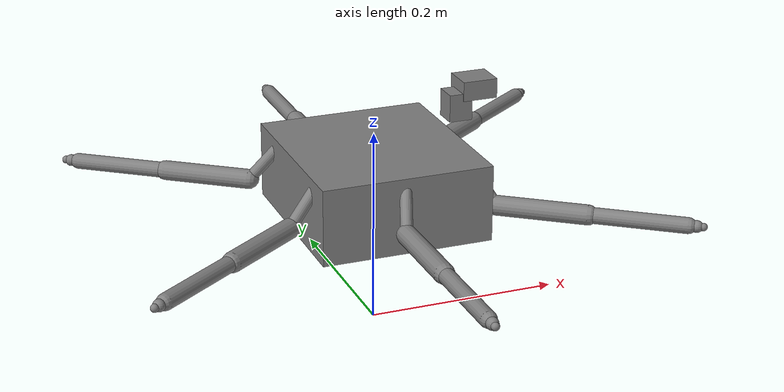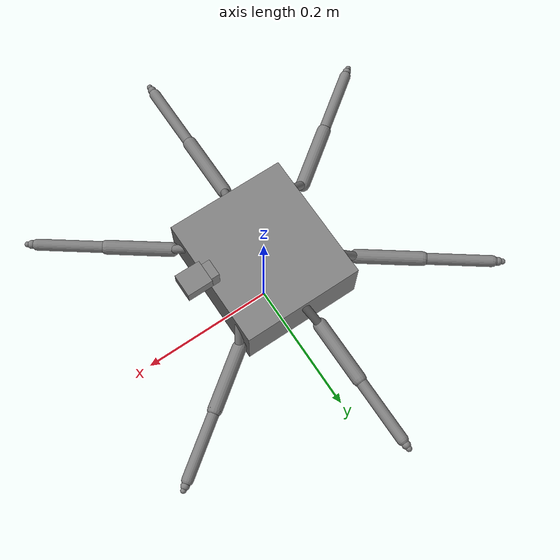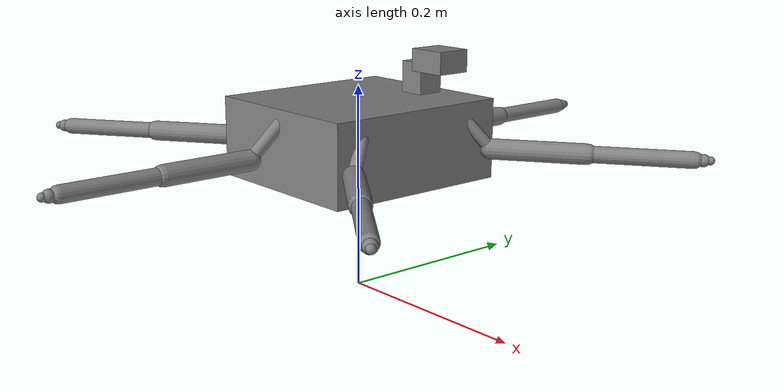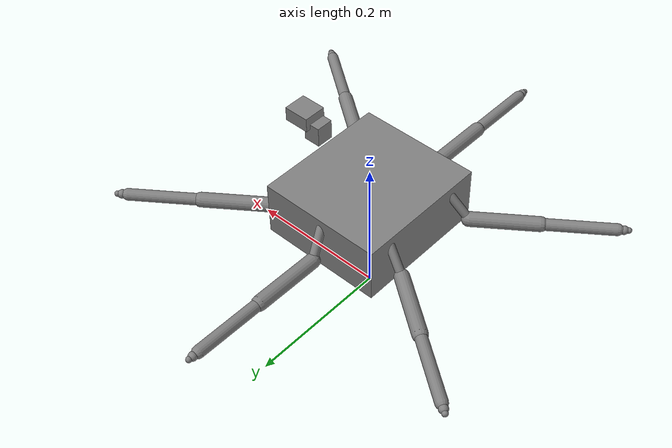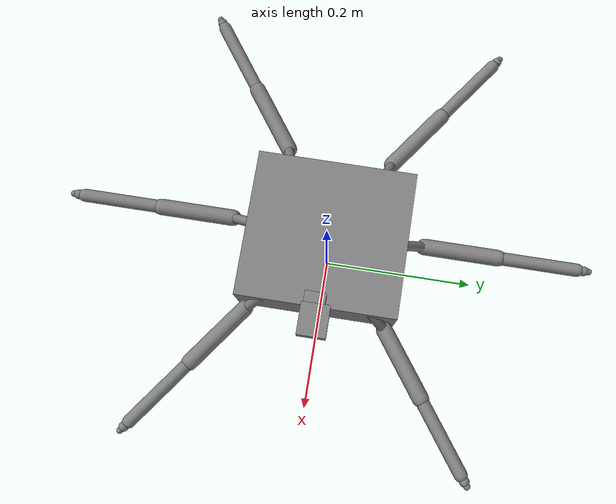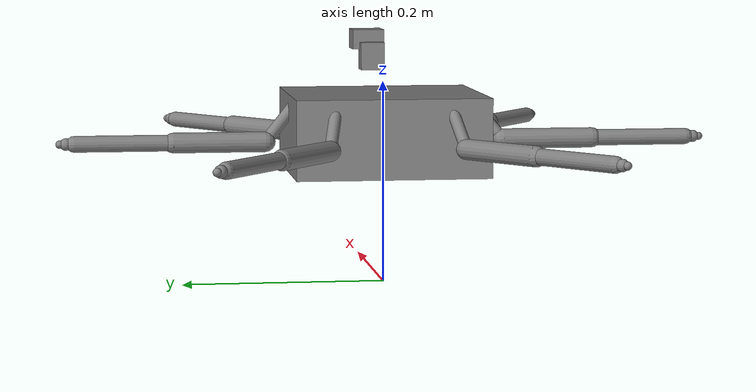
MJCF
<mujoco model="hexapod">

  <compiler angle="degree" autolimits="true"/>

<!-- Default values for the hexapod robot -->
  <default>
    <default class="hexapod">
      <joint range="-90 90"/>
      <geom type="capsule"/>
      <default class="coxa">
        <joint range="-30 30"/>
        <geom size="0.006" mass="0"/>
      </default>
      <default class="femur">
        <geom size="0.010" mass="0"/>
      </default>
      <default class="tibia">
        <joint range="-160 0"/>
        <geom size="0.008" mass="0"/>
      </default>
      <default class="foot">
        <geom type="sphere" size="0.006" mass="0"/>
      </default>
    </default>
  </default>

<!-- Collision geometries for full hexapod -->
  <worldbody>
    <!-- Spawn height is a placeholder; mjlab sets it via InitialStateCfg. -->
    <body name="base" pos="0 0 0.15" childclass="hexapod">
      <freejoint name="root"/>
      <inertial pos="0.00656 -0.00007 0.00925" mass="1.0698"
                fullinertia="3.731e-03 3.592e-03 5.292e-03 -1.208e-05 -1.298e-04 -1.422e-06"/>
      <geom name="base_col" type="box" size="0.087 0.095 0.0388"
            pos="0 0 0" mass="0"/>

      <body name="head_pan" pos="0.0882 0 0.0638">
        <inertial pos="0.00361 0.00318 0.01345" mass="0.0161"
                  fullinertia="3.051e-06 4.215e-06 3.342e-06 7.285e-07 1.738e-07 2.240e-07"/>
        <joint name="head_pan_joint" axis="0 0 1" range="-90 90"/>
        <geom name="head_pan_vis" type="box" size="0.012 0.012 0.014"
              pos="0 0 0.006" mass="0" contype="0" conaffinity="0"/>
        <body name="head_tilt" pos="0 0.0026 0.0184">
          <inertial pos="0.03260 -0.00137 0.00528" mass="0.0281"
                    fullinertia="1.098e-05 7.215e-06 7.746e-06 1.925e-07 -2.802e-07 1.785e-08"/>
          <joint name="head_tilt_joint" axis="0 -1 0" range="-40 90"/>
          <geom name="head_tilt_vis" type="box" size="0.018 0.016 0.010"
                pos="0.020 0 0.004" mass="0" contype="0" conaffinity="0"/>
          <site name="sonar" pos="0.0331 -0.0016 0.0090" zaxis="1 0 0"
                size="0.004"/>
          <site name="sonar_l" pos="0.0331 -0.0016 0.0090"
                zaxis="0.99144 0.13053 0" size="0.002"/>
          <site name="sonar_r" pos="0.0331 -0.0016 0.0090"
                zaxis="0.99144 -0.13053 0" size="0.002"/>
          <site name="sonar_u" pos="0.0331 -0.0016 0.0090"
                zaxis="0.99144 0 0.13053" size="0.002"/>
          <site name="sonar_d" pos="0.0331 -0.0016 0.0090"
                zaxis="0.99144 0 -0.13053" size="0.002"/>
          <camera name="front_camera" pos="0.0148 -0.0026 0.0"
                  xyaxes="0 -1 0 0 0 1" fovy="49"/>
        </body>
      </body>

      <body name="leg1_coxa" pos="-0.075886 0.055134 0.0318" euler="0 0 144">
        <inertial pos="0.02917 -0.01084 -0.02647" mass="0.0787"
                  fullinertia="2.370e-05 3.266e-05 2.391e-05 1.442e-06 2.279e-06 -4.832e-07"/>
        <joint name="leg1_coxa_joint" class="coxa" axis="0 0 1"/>
        <geom name="leg1_coxa_col" class="coxa"
              fromto="0 0 0  0.0333 0.0118 -0.0393"/>
        <body name="leg1_femur" pos="0.0333 0.0118 -0.0393">
          <inertial pos="0.04446 0.00235 0.00410" mass="0.0127"
                    fullinertia="4.952e-06 9.717e-06 1.222e-05 9.084e-08 -2.539e-07 1.190e-07"/>
          <joint name="leg1_femur_joint" axis="0 -1 0"/>
          <geom name="leg1_femur_col" class="femur" fromto="0 0 0  0.090 0 0"/>
          <body name="leg1_tibia" pos="0.090 0 0">
            <inertial pos="0.01303 -0.02281 0.00060" mass="0.0716"
                      fullinertia="1.744e-05 3.756e-05 3.618e-05 -2.797e-06 -2.305e-07 2.594e-09"/>
            <joint name="leg1_tibia_joint" class="tibia" axis="0 -1 0"/>
            <geom name="leg1_tibia_col" class="tibia" fromto="0 0 0  0.096 0 0"/>
            <geom name="leg1_foot_col" class="foot" pos="0.104 0 0"/>
            <site name="leg1_foot" pos="0.110 0 0" size="0.004"/>
          </body>
        </body>
      </body>

      <body name="leg2_coxa" pos="0.000000 0.085000 0.0318" euler="0 0 90">
        <inertial pos="0.02917 -0.01084 -0.02647" mass="0.0787"
                  fullinertia="2.370e-05 3.266e-05 2.391e-05 1.442e-06 2.279e-06 -4.832e-07"/>
        <joint name="leg2_coxa_joint" class="coxa" axis="0 0 1"/>
        <geom name="leg2_coxa_col" class="coxa"
              fromto="0 0 0  0.0333 0.0118 -0.0393"/>
        <body name="leg2_femur" pos="0.0333 0.0118 -0.0393">
          <inertial pos="0.04446 0.00235 0.00410" mass="0.0127"
                    fullinertia="4.952e-06 9.717e-06 1.222e-05 9.084e-08 -2.539e-07 1.190e-07"/>
          <joint name="leg2_femur_joint" axis="0 -1 0"/>
          <geom name="leg2_femur_col" class="femur" fromto="0 0 0  0.090 0 0"/>
          <body name="leg2_tibia" pos="0.090 0 0">
            <inertial pos="0.01303 -0.02281 0.00060" mass="0.0716"
                      fullinertia="1.744e-05 3.756e-05 3.618e-05 -2.797e-06 -2.305e-07 2.594e-09"/>
            <joint name="leg2_tibia_joint" class="tibia" axis="0 -1 0"/>
            <geom name="leg2_tibia_col" class="tibia" fromto="0 0 0  0.096 0 0"/>
            <geom name="leg2_foot_col" class="foot" pos="0.104 0 0"/>
            <site name="leg2_foot" pos="0.110 0 0" size="0.004"/>
          </body>
        </body>
      </body>

      <body name="leg3_coxa" pos="0.075886 0.055134 0.0318" euler="0 0 36">
        <inertial pos="0.02917 -0.01084 -0.02647" mass="0.0787"
                  fullinertia="2.370e-05 3.266e-05 2.391e-05 1.442e-06 2.279e-06 -4.832e-07"/>
        <joint name="leg3_coxa_joint" class="coxa" axis="0 0 1"/>
        <geom name="leg3_coxa_col" class="coxa"
              fromto="0 0 0  0.0333 0.0118 -0.0393"/>
        <body name="leg3_femur" pos="0.0333 0.0118 -0.0393">
          <inertial pos="0.04446 0.00235 0.00410" mass="0.0127"
                    fullinertia="4.952e-06 9.717e-06 1.222e-05 9.084e-08 -2.539e-07 1.190e-07"/>
          <joint name="leg3_femur_joint" axis="0 -1 0"/>
          <geom name="leg3_femur_col" class="femur" fromto="0 0 0  0.090 0 0"/>
          <body name="leg3_tibia" pos="0.090 0 0">
            <inertial pos="0.01303 -0.02281 0.00060" mass="0.0716"
                      fullinertia="1.744e-05 3.756e-05 3.618e-05 -2.797e-06 -2.305e-07 2.594e-09"/>
            <joint name="leg3_tibia_joint" class="tibia" axis="0 -1 0"/>
            <geom name="leg3_tibia_col" class="tibia" fromto="0 0 0  0.096 0 0"/>
            <geom name="leg3_foot_col" class="foot" pos="0.104 0 0"/>
            <site name="leg3_foot" pos="0.110 0 0" size="0.004"/>
          </body>
        </body>
      </body>

      <body name="leg4_coxa" pos="0.075886 -0.055134 0.0318" euler="0 0 -36">
        <inertial pos="0.02917 0.01084 -0.02647" mass="0.0787"
                  fullinertia="2.370e-05 3.266e-05 2.391e-05 -1.442e-06 2.279e-06 4.832e-07"/>
        <joint name="leg4_coxa_joint" class="coxa" axis="0 0 1"/>
        <geom name="leg4_coxa_col" class="coxa"
              fromto="0 0 0  0.0333 -0.0118 -0.0393"/>
        <body name="leg4_femur" pos="0.0333 -0.0118 -0.0393">
          <inertial pos="0.04446 -0.00235 0.00410" mass="0.0127"
                    fullinertia="4.952e-06 9.717e-06 1.222e-05 -9.084e-08 -2.539e-07 -1.190e-07"/>
          <joint name="leg4_femur_joint" axis="0 -1 0"/>
          <geom name="leg4_femur_col" class="femur" fromto="0 0 0  0.090 0 0"/>
          <body name="leg4_tibia" pos="0.090 0 0">
            <inertial pos="0.01303 0.02281 0.00060" mass="0.0716"
                      fullinertia="1.744e-05 3.756e-05 3.618e-05 2.797e-06 -2.305e-07 -2.594e-09"/>
            <joint name="leg4_tibia_joint" class="tibia" axis="0 -1 0"/>
            <geom name="leg4_tibia_col" class="tibia" fromto="0 0 0  0.096 0 0"/>
            <geom name="leg4_foot_col" class="foot" pos="0.104 0 0"/>
            <site name="leg4_foot" pos="0.110 0 0" size="0.004"/>
          </body>
        </body>
      </body>

      <body name="leg5_coxa" pos="0.000000 -0.085000 0.0318" euler="0 0 -90">
        <inertial pos="0.02917 0.01084 -0.02647" mass="0.0787"
                  fullinertia="2.370e-05 3.266e-05 2.391e-05 -1.442e-06 2.279e-06 4.832e-07"/>
        <joint name="leg5_coxa_joint" class="coxa" axis="0 0 1"/>
        <geom name="leg5_coxa_col" class="coxa"
              fromto="0 0 0  0.0333 -0.0118 -0.0393"/>
        <body name="leg5_femur" pos="0.0333 -0.0118 -0.0393">
          <inertial pos="0.04446 -0.00235 0.00410" mass="0.0127"
                    fullinertia="4.952e-06 9.717e-06 1.222e-05 -9.084e-08 -2.539e-07 -1.190e-07"/>
          <joint name="leg5_femur_joint" axis="0 -1 0"/>
          <geom name="leg5_femur_col" class="femur" fromto="0 0 0  0.090 0 0"/>
          <body name="leg5_tibia" pos="0.090 0 0">
            <inertial pos="0.01303 0.02281 0.00060" mass="0.0716"
                      fullinertia="1.744e-05 3.756e-05 3.618e-05 2.797e-06 -2.305e-07 -2.594e-09"/>
            <joint name="leg5_tibia_joint" class="tibia" axis="0 -1 0"/>
            <geom name="leg5_tibia_col" class="tibia" fromto="0 0 0  0.096 0 0"/>
            <geom name="leg5_foot_col" class="foot" pos="0.104 0 0"/>
            <site name="leg5_foot" pos="0.110 0 0" size="0.004"/>
          </body>
        </body>
      </body>

      <body name="leg6_coxa" pos="-0.075886 -0.055134 0.0318" euler="0 0 -144">
        <inertial pos="0.02917 0.01084 -0.02647" mass="0.0787"
                  fullinertia="2.370e-05 3.266e-05 2.391e-05 -1.442e-06 2.279e-06 4.832e-07"/>
        <joint name="leg6_coxa_joint" class="coxa" axis="0 0 1"/>
        <geom name="leg6_coxa_col" class="coxa"
              fromto="0 0 0  0.0333 -0.0118 -0.0393"/>
        <body name="leg6_femur" pos="0.0333 -0.0118 -0.0393">
          <inertial pos="0.04446 -0.00235 0.00410" mass="0.0127"
                    fullinertia="4.952e-06 9.717e-06 1.222e-05 -9.084e-08 -2.539e-07 -1.190e-07"/>
          <joint name="leg6_femur_joint" axis="0 -1 0"/>
          <geom name="leg6_femur_col" class="femur" fromto="0 0 0  0.090 0 0"/>
          <body name="leg6_tibia" pos="0.090 0 0">
            <inertial pos="0.01303 0.02281 0.00060" mass="0.0716"
                      fullinertia="1.744e-05 3.756e-05 3.618e-05 2.797e-06 -2.305e-07 -2.594e-09"/>
            <joint name="leg6_tibia_joint" class="tibia" axis="0 -1 0"/>
            <geom name="leg6_tibia_col" class="tibia" fromto="0 0 0  0.096 0 0"/>
            <geom name="leg6_foot_col" class="foot" pos="0.104 0 0"/>
            <site name="leg6_foot" pos="0.110 0 0" size="0.004"/>
          </body>
        </body>
      </body>
    </body>
  </worldbody>

  <sensor>
    <rangefinder name="sonar" site="sonar" cutoff="3"/>
    <rangefinder name="sonar_l" site="sonar_l" cutoff="3"/>
    <rangefinder name="sonar_r" site="sonar_r" cutoff="3"/>
    <rangefinder name="sonar_u" site="sonar_u" cutoff="3"/>
    <rangefinder name="sonar_d" site="sonar_d" cutoff="3"/>
  </sensor>

  <contact>
    <exclude body1="base" body2="leg1_femur"/>
    <exclude body1="base" body2="leg2_femur"/>
    <exclude body1="base" body2="leg3_femur"/>
    <exclude body1="base" body2="leg4_femur"/>
    <exclude body1="base" body2="leg5_femur"/>
    <exclude body1="base" body2="leg6_femur"/>
  </contact>
</mujoco>
